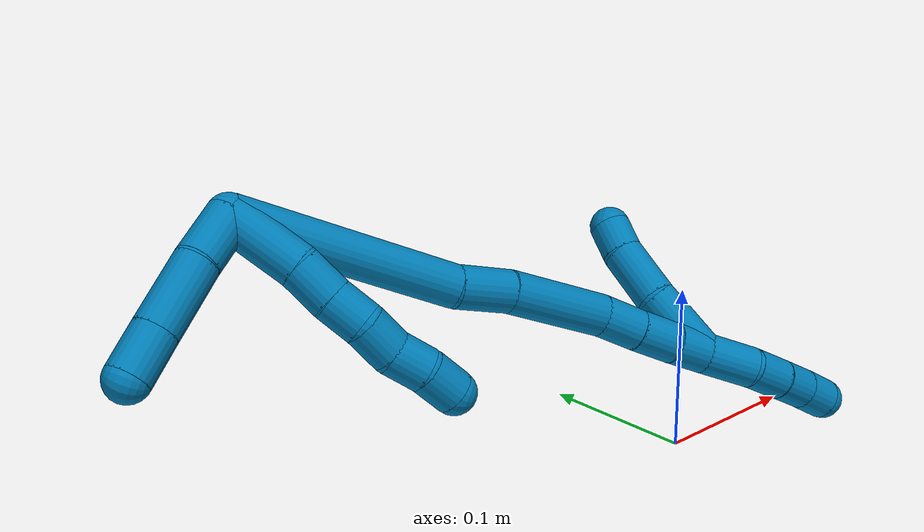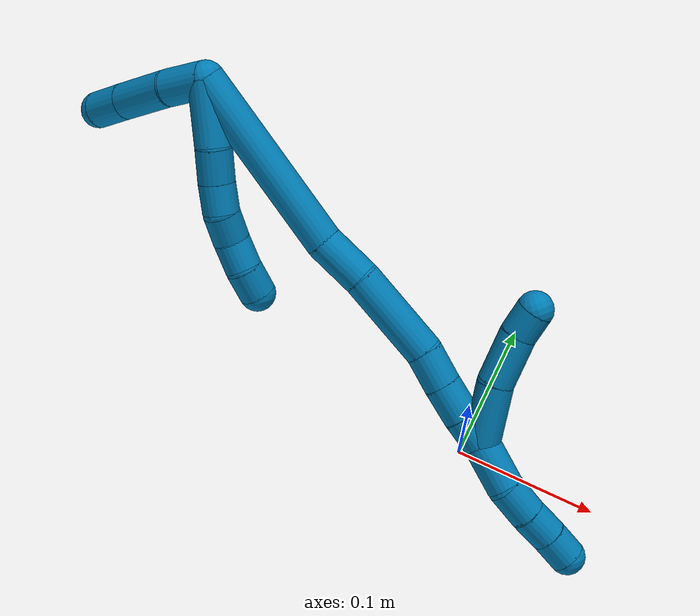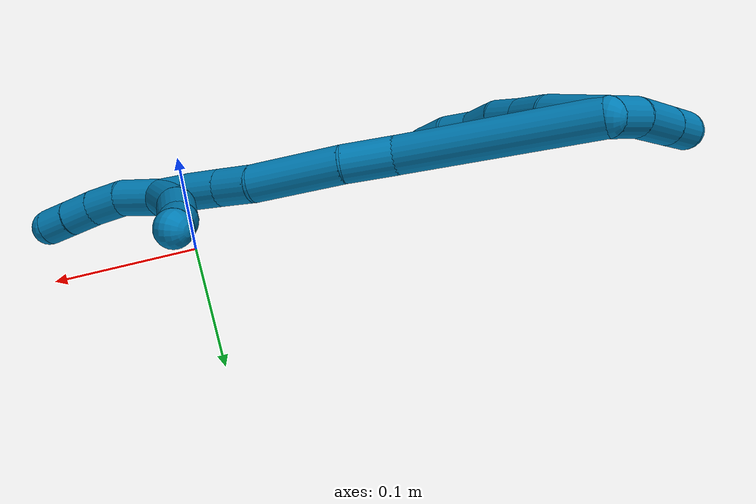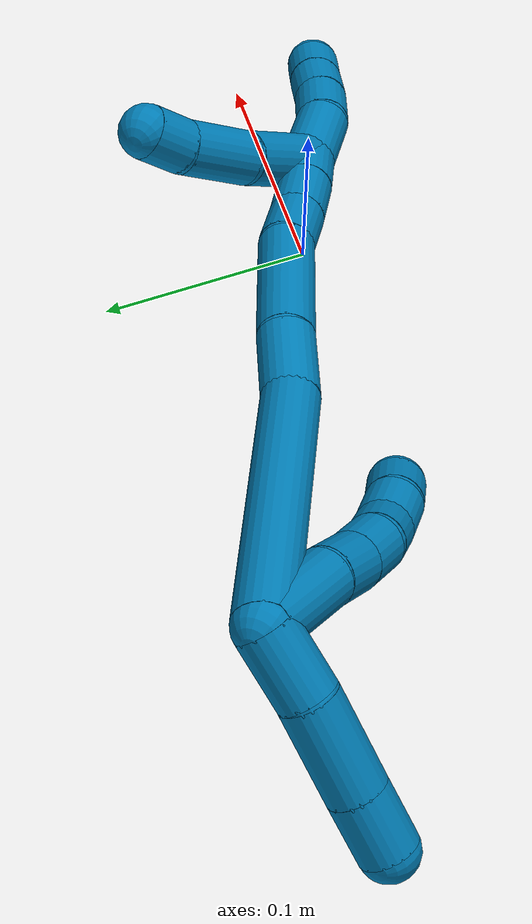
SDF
<sdf version="1.7">
 <world name="default">
  <model name="9">
   <static>0</static>
   <link name="9">
    <collision name="collision-cylinder-e_1_2_8">
     <pose>-0.001645 0.005827 -0.021185 -2.87316 -0.074739 0.540229</pose>
     <geometry><cylinder><radius>0.0125</radius><length>0.044066</length></cylinder></geometry>
     <surface>
      <friction><ode><mu>1.16</mu><mu2>1.16</mu2><slip1>0</slip1><slip2>0</slip2></ode></friction>
      <contact><ode><kp>1e+06</kp><kd>1</kd><max_vel>0</max_vel><min_depth>0.001</min_depth></ode></contact>
     </surface>
    </collision>
    <visual name="visual-cylinder-e_1_2_8">
     <pose>-0.001645 0.005827 -0.021185 -2.87316 -0.074739 0.540229</pose>
     <geometry><cylinder><radius>0.0125</radius><length>0.044066</length></cylinder></geometry>
     <material><ambient>0 0.490196 0.709804 1</ambient></material>
    </visual>
    <collision name="collision-cylinder-e_2_8_9">
     <pose>-0.003289 0.016285 -0.053059 -2.73287 8.4e-05 -0.000407</pose>
     <geometry><cylinder><radius>0.0125</radius><length>0.023299</length></cylinder></geometry>
     <surface>
      <friction><ode><mu>1.16</mu><mu2>1.16</mu2><slip1>0</slip1><slip2>0</slip2></ode></friction>
      <contact><ode><kp>1e+06</kp><kd>1</kd><max_vel>0</max_vel><min_depth>0.001</min_depth></ode></contact>
     </surface>
    </collision>
    <visual name="visual-cylinder-e_2_8_9">
     <pose>-0.003289 0.016285 -0.053059 -2.73287 8.4e-05 -0.000407</pose>
     <geometry><cylinder><radius>0.0125</radius><length>0.023299</length></cylinder></geometry>
     <material><ambient>0 0.490196 0.709804 1</ambient></material>
    </visual>
    <collision name="collision-cylinder-e_3_9_10">
     <pose>-0.003292 0.023946 -0.073598 -2.84302 -0.000343 0.002282</pose>
     <geometry><cylinder><radius>0.0125</radius><length>0.020609</length></cylinder></geometry>
     <surface>
      <friction><ode><mu>1.16</mu><mu2>1.16</mu2><slip1>0</slip1><slip2>0</slip2></ode></friction>
      <contact><ode><kp>1e+06</kp><kd>1</kd><max_vel>0</max_vel><min_depth>0.001</min_depth></ode></contact>
     </surface>
    </collision>
    <visual name="visual-cylinder-e_3_9_10">
     <pose>-0.003292 0.023946 -0.073598 -2.84302 -0.000343 0.002282</pose>
     <geometry><cylinder><radius>0.0125</radius><length>0.020609</length></cylinder></geometry>
     <material><ambient>0 0.490196 0.709804 1</ambient></material>
    </visual>
    <collision name="collision-cylinder-e_4_10_11">
     <pose>-0.000426 0.030647 -0.092773 -2.76668 0.278888 -1.27408</pose>
     <geometry><cylinder><radius>0.0125</radius><length>0.020851</length></cylinder></geometry>
     <surface>
      <friction><ode><mu>1.16</mu><mu2>1.16</mu2><slip1>0</slip1><slip2>0</slip2></ode></friction>
      <contact><ode><kp>1e+06</kp><kd>1</kd><max_vel>0</max_vel><min_depth>0.001</min_depth></ode></contact>
     </surface>
    </collision>
    <visual name="visual-cylinder-e_4_10_11">
     <pose>-0.000426 0.030647 -0.092773 -2.76668 0.278888 -1.27408</pose>
     <geometry><cylinder><radius>0.0125</radius><length>0.020851</length></cylinder></geometry>
     <material><ambient>0 0.490196 0.709804 1</ambient></material>
    </visual>
    <collision name="collision-cylinder-e_5_11_12">
     <pose>0.004263 0.035449 -0.112143 -3.02938 0.178007 -2.0181</pose>
     <geometry><cylinder><radius>0.0125</radius><length>0.020539</length></cylinder></geometry>
     <surface>
      <friction><ode><mu>1.16</mu><mu2>1.16</mu2><slip1>0</slip1><slip2>0</slip2></ode></friction>
      <contact><ode><kp>1e+06</kp><kd>1</kd><max_vel>0</max_vel><min_depth>0.001</min_depth></ode></contact>
     </surface>
    </collision>
    <visual name="visual-cylinder-e_5_11_12">
     <pose>0.004263 0.035449 -0.112143 -3.02938 0.178007 -2.0181</pose>
     <geometry><cylinder><radius>0.0125</radius><length>0.020539</length></cylinder></geometry>
     <material><ambient>0 0.490196 0.709804 1</ambient></material>
    </visual>
    <collision name="collision-cylinder-e_6_12_6">
     <pose>0.009854 0.038867 -0.131514 -2.90124 0.374325 -2.0063</pose>
     <geometry><cylinder><radius>0.0125</radius><length>0.020636</length></cylinder></geometry>
     <surface>
      <friction><ode><mu>1.16</mu><mu2>1.16</mu2><slip1>0</slip1><slip2>0</slip2></ode></friction>
      <contact><ode><kp>1e+06</kp><kd>1</kd><max_vel>0</max_vel><min_depth>0.001</min_depth></ode></contact>
     </surface>
    </collision>
    <visual name="visual-cylinder-e_6_12_6">
     <pose>0.009854 0.038867 -0.131514 -2.90124 0.374325 -2.0063</pose>
     <geometry><cylinder><radius>0.0125</radius><length>0.020636</length></cylinder></geometry>
     <material><ambient>0 0.490196 0.709804 1</ambient></material>
    </visual>
    <collision name="collision-cylinder-e_1_2_13">
     <pose>-0.005372 0.014489 0.002413 -1.40576 -0.350615 0.297906</pose>
     <geometry><cylinder><radius>0.0125</radius><length>0.031281</length></cylinder></geometry>
     <surface>
      <friction><ode><mu>1.16</mu><mu2>1.16</mu2><slip1>0</slip1><slip2>0</slip2></ode></friction>
      <contact><ode><kp>1e+06</kp><kd>1</kd><max_vel>0</max_vel><min_depth>0.001</min_depth></ode></contact>
     </surface>
    </collision>
    <visual name="visual-cylinder-e_1_2_13">
     <pose>-0.005372 0.014489 0.002413 -1.40576 -0.350615 0.297906</pose>
     <geometry><cylinder><radius>0.0125</radius><length>0.031281</length></cylinder></geometry>
     <material><ambient>0 0.490196 0.709804 1</ambient></material>
    </visual>
    <collision name="collision-cylinder-e_2_13_14">
     <pose>-0.015374 0.049056 0.007221 -1.45208 -0.225083 0.20001</pose>
     <geometry><cylinder><radius>0.0125</radius><length>0.041485</length></cylinder></geometry>
     <surface>
      <friction><ode><mu>1.16</mu><mu2>1.16</mu2><slip1>0</slip1><slip2>0</slip2></ode></friction>
      <contact><ode><kp>1e+06</kp><kd>1</kd><max_vel>0</max_vel><min_depth>0.001</min_depth></ode></contact>
     </surface>
    </collision>
    <visual name="visual-cylinder-e_2_13_14">
     <pose>-0.015374 0.049056 0.007221 -1.45208 -0.225083 0.20001</pose>
     <geometry><cylinder><radius>0.0125</radius><length>0.041485</length></cylinder></geometry>
     <material><ambient>0 0.490196 0.709804 1</ambient></material>
    </visual>
    <collision name="collision-cylinder-e_3_14_5">
     <pose>-0.023103 0.082317 0.011023 -1.46445 -0.229626 0.206591</pose>
     <geometry><cylinder><radius>0.0125</radius><length>0.027234</length></cylinder></geometry>
     <surface>
      <friction><ode><mu>1.16</mu><mu2>1.16</mu2><slip1>0</slip1><slip2>0</slip2></ode></friction>
      <contact><ode><kp>1e+06</kp><kd>1</kd><max_vel>0</max_vel><min_depth>0.001</min_depth></ode></contact>
     </surface>
    </collision>
    <visual name="visual-cylinder-e_3_14_5">
     <pose>-0.023103 0.082317 0.011023 -1.46445 -0.229626 0.206591</pose>
     <geometry><cylinder><radius>0.0125</radius><length>0.027234</length></cylinder></geometry>
     <material><ambient>0 0.490196 0.709804 1</ambient></material>
    </visual>
    <collision name="collision-cylinder-e_1_2_15">
     <pose>0.01881 -0.007836 -0.06164 3.01514 0.293947 2.33338</pose>
     <geometry><cylinder><radius>0.0125</radius><length>0.129841</length></cylinder></geometry>
     <surface>
      <friction><ode><mu>1.16</mu><mu2>1.16</mu2><slip1>0</slip1><slip2>0</slip2></ode></friction>
      <contact><ode><kp>1e+06</kp><kd>1</kd><max_vel>0</max_vel><min_depth>0.001</min_depth></ode></contact>
     </surface>
    </collision>
    <visual name="visual-cylinder-e_1_2_15">
     <pose>0.01881 -0.007836 -0.06164 3.01514 0.293947 2.33338</pose>
     <geometry><cylinder><radius>0.0125</radius><length>0.129841</length></cylinder></geometry>
     <material><ambient>0 0.490196 0.709804 1</ambient></material>
    </visual>
    <collision name="collision-cylinder-e_2_15_16">
     <pose>0.043557 -0.021059 -0.138389 2.79912 0.354521 1.60607</pose>
     <geometry><cylinder><radius>0.0125</radius><length>0.03421</length></cylinder></geometry>
     <surface>
      <friction><ode><mu>1.16</mu><mu2>1.16</mu2><slip1>0</slip1><slip2>0</slip2></ode></friction>
      <contact><ode><kp>1e+06</kp><kd>1</kd><max_vel>0</max_vel><min_depth>0.001</min_depth></ode></contact>
     </surface>
    </collision>
    <visual name="visual-cylinder-e_2_15_16">
     <pose>0.043557 -0.021059 -0.138389 2.79912 0.354521 1.60607</pose>
     <geometry><cylinder><radius>0.0125</radius><length>0.03421</length></cylinder></geometry>
     <material><ambient>0 0.490196 0.709804 1</ambient></material>
    </visual>
    <collision name="collision-cylinder-e_3_16_17">
     <pose>0.060298 -0.031953 -0.182566 2.95436 0.350115 2.16556</pose>
     <geometry><cylinder><radius>0.0125</radius><length>0.06299</length></cylinder></geometry>
     <surface>
      <friction><ode><mu>1.16</mu><mu2>1.16</mu2><slip1>0</slip1><slip2>0</slip2></ode></friction>
      <contact><ode><kp>1e+06</kp><kd>1</kd><max_vel>0</max_vel><min_depth>0.001</min_depth></ode></contact>
     </surface>
    </collision>
    <visual name="visual-cylinder-e_3_16_17">
     <pose>0.060298 -0.031953 -0.182566 2.95436 0.350115 2.16556</pose>
     <geometry><cylinder><radius>0.0125</radius><length>0.06299</length></cylinder></geometry>
     <material><ambient>0 0.490196 0.709804 1</ambient></material>
    </visual>
    <collision name="collision-cylinder-e_4_17_18">
     <pose>0.07374 -0.037913 -0.223965 3.10486 0.210703 2.79762</pose>
     <geometry><cylinder><radius>0.0125</radius><length>0.025239</length></cylinder></geometry>
     <surface>
      <friction><ode><mu>1.16</mu><mu2>1.16</mu2><slip1>0</slip1><slip2>0</slip2></ode></friction>
      <contact><ode><kp>1e+06</kp><kd>1</kd><max_vel>0</max_vel><min_depth>0.001</min_depth></ode></contact>
     </surface>
    </collision>
    <visual name="visual-cylinder-e_4_17_18">
     <pose>0.07374 -0.037913 -0.223965 3.10486 0.210703 2.79762</pose>
     <geometry><cylinder><radius>0.0125</radius><length>0.025239</length></cylinder></geometry>
     <material><ambient>0 0.490196 0.709804 1</ambient></material>
    </visual>
    <collision name="collision-cylinder-e_5_18_19">
     <pose>0.079321 -0.039328 -0.248562 3.06326 0.234707 2.49979</pose>
     <geometry><cylinder><radius>0.0125</radius><length>0.025297</length></cylinder></geometry>
     <surface>
      <friction><ode><mu>1.16</mu><mu2>1.16</mu2><slip1>0</slip1><slip2>0</slip2></ode></friction>
      <contact><ode><kp>1e+06</kp><kd>1</kd><max_vel>0</max_vel><min_depth>0.001</min_depth></ode></contact>
     </surface>
    </collision>
    <visual name="visual-cylinder-e_5_18_19">
     <pose>0.079321 -0.039328 -0.248562 3.06326 0.234707 2.49979</pose>
     <geometry><cylinder><radius>0.0125</radius><length>0.025297</length></cylinder></geometry>
     <material><ambient>0 0.490196 0.709804 1</ambient></material>
    </visual>
    <collision name="collision-cylinder-e_6_19_1">
     <pose>0.085558 -0.041586 -0.271464 3.02047 0.298335 2.37462</pose>
     <geometry><cylinder><radius>0.0125</radius><length>0.022423</length></cylinder></geometry>
     <surface>
      <friction><ode><mu>1.16</mu><mu2>1.16</mu2><slip1>0</slip1><slip2>0</slip2></ode></friction>
      <contact><ode><kp>1e+06</kp><kd>1</kd><max_vel>0</max_vel><min_depth>0.001</min_depth></ode></contact>
     </surface>
    </collision>
    <visual name="visual-cylinder-e_6_19_1">
     <pose>0.085558 -0.041586 -0.271464 3.02047 0.298335 2.37462</pose>
     <geometry><cylinder><radius>0.0125</radius><length>0.022423</length></cylinder></geometry>
     <material><ambient>0 0.490196 0.709804 1</ambient></material>
    </visual>
    <collision name="collision-cylinder-e_1_1_20">
     <pose>0.093234 -0.054076 -0.263688 0.546273 0.200552 0.056356</pose>
     <geometry><cylinder><radius>0.0125</radius><length>0.04398</length></cylinder></geometry>
     <surface>
      <friction><ode><mu>1.16</mu><mu2>1.16</mu2><slip1>0</slip1><slip2>0</slip2></ode></friction>
      <contact><ode><kp>1e+06</kp><kd>1</kd><max_vel>0</max_vel><min_depth>0.001</min_depth></ode></contact>
     </surface>
    </collision>
    <visual name="visual-cylinder-e_1_1_20">
     <pose>0.093234 -0.054076 -0.263688 0.546273 0.200552 0.056356</pose>
     <geometry><cylinder><radius>0.0125</radius><length>0.04398</length></cylinder></geometry>
     <material><ambient>0 0.490196 0.709804 1</ambient></material>
    </visual>
    <collision name="collision-cylinder-e_2_20_21">
     <pose>0.103997 -0.075812 -0.232261 0.680776 0.364088 0.13021</pose>
     <geometry><cylinder><radius>0.0125</radius><length>0.035845</length></cylinder></geometry>
     <surface>
      <friction><ode><mu>1.16</mu><mu2>1.16</mu2><slip1>0</slip1><slip2>0</slip2></ode></friction>
      <contact><ode><kp>1e+06</kp><kd>1</kd><max_vel>0</max_vel><min_depth>0.001</min_depth></ode></contact>
     </surface>
    </collision>
    <visual name="visual-cylinder-e_2_20_21">
     <pose>0.103997 -0.075812 -0.232261 0.680776 0.364088 0.13021</pose>
     <geometry><cylinder><radius>0.0125</radius><length>0.035845</length></cylinder></geometry>
     <material><ambient>0 0.490196 0.709804 1</ambient></material>
    </visual>
    <collision name="collision-cylinder-e_3_21_4">
     <pose>0.113932 -0.093597 -0.213193 0.874695 0.360004 0.169751</pose>
     <geometry><cylinder><radius>0.0125</radius><length>0.020175</length></cylinder></geometry>
     <surface>
      <friction><ode><mu>1.16</mu><mu2>1.16</mu2><slip1>0</slip1><slip2>0</slip2></ode></friction>
      <contact><ode><kp>1e+06</kp><kd>1</kd><max_vel>0</max_vel><min_depth>0.001</min_depth></ode></contact>
     </surface>
    </collision>
    <visual name="visual-cylinder-e_3_21_4">
     <pose>0.113932 -0.093597 -0.213193 0.874695 0.360004 0.169751</pose>
     <geometry><cylinder><radius>0.0125</radius><length>0.020175</length></cylinder></geometry>
     <material><ambient>0 0.490196 0.709804 1</ambient></material>
    </visual>
    <collision name="collision-cylinder-e_1_1_22">
     <pose>0.091362 -0.044625 -0.298432 3.03518 0.151575 1.9183</pose>
     <geometry><cylinder><radius>0.0125</radius><length>0.033228</length></cylinder></geometry>
     <surface>
      <friction><ode><mu>1.16</mu><mu2>1.16</mu2><slip1>0</slip1><slip2>0</slip2></ode></friction>
      <contact><ode><kp>1e+06</kp><kd>1</kd><max_vel>0</max_vel><min_depth>0.001</min_depth></ode></contact>
     </surface>
    </collision>
    <visual name="visual-cylinder-e_1_1_22">
     <pose>0.091362 -0.044625 -0.298432 3.03518 0.151575 1.9183</pose>
     <geometry><cylinder><radius>0.0125</radius><length>0.033228</length></cylinder></geometry>
     <material><ambient>0 0.490196 0.709804 1</ambient></material>
    </visual>
    <collision name="collision-cylinder-e_2_22_23">
     <pose>0.098721 -0.047279 -0.325904 3.06011 0.40943 2.75384</pose>
     <geometry><cylinder><radius>0.0125</radius><length>0.024371</length></cylinder></geometry>
     <surface>
      <friction><ode><mu>1.16</mu><mu2>1.16</mu2><slip1>0</slip1><slip2>0</slip2></ode></friction>
      <contact><ode><kp>1e+06</kp><kd>1</kd><max_vel>0</max_vel><min_depth>0.001</min_depth></ode></contact>
     </surface>
    </collision>
    <visual name="visual-cylinder-e_2_22_23">
     <pose>0.098721 -0.047279 -0.325904 3.06011 0.40943 2.75384</pose>
     <geometry><cylinder><radius>0.0125</radius><length>0.024371</length></cylinder></geometry>
     <material><ambient>0 0.490196 0.709804 1</ambient></material>
    </visual>
    <collision name="collision-cylinder-e_3_23_24">
     <pose>0.108675 -0.049049 -0.346563 3.05154 0.490405 2.7853</pose>
     <geometry><cylinder><radius>0.0125</radius><length>0.021668</length></cylinder></geometry>
     <surface>
      <friction><ode><mu>1.16</mu><mu2>1.16</mu2><slip1>0</slip1><slip2>0</slip2></ode></friction>
      <contact><ode><kp>1e+06</kp><kd>1</kd><max_vel>0</max_vel><min_depth>0.001</min_depth></ode></contact>
     </surface>
    </collision>
    <visual name="visual-cylinder-e_3_23_24">
     <pose>0.108675 -0.049049 -0.346563 3.05154 0.490405 2.7853</pose>
     <geometry><cylinder><radius>0.0125</radius><length>0.021668</length></cylinder></geometry>
     <material><ambient>0 0.490196 0.709804 1</ambient></material>
    </visual>
    <collision name="collision-cylinder-e_4_24_3">
     <pose>0.118415 -0.05032 -0.365344 3.09715 0.463846 2.95394</pose>
     <geometry><cylinder><radius>0.0125</radius><length>0.020734</length></cylinder></geometry>
     <surface>
      <friction><ode><mu>1.16</mu><mu2>1.16</mu2><slip1>0</slip1><slip2>0</slip2></ode></friction>
      <contact><ode><kp>1e+06</kp><kd>1</kd><max_vel>0</max_vel><min_depth>0.001</min_depth></ode></contact>
     </surface>
    </collision>
    <visual name="visual-cylinder-e_4_24_3">
     <pose>0.118415 -0.05032 -0.365344 3.09715 0.463846 2.95394</pose>
     <geometry><cylinder><radius>0.0125</radius><length>0.020734</length></cylinder></geometry>
     <material><ambient>0 0.490196 0.709804 1</ambient></material>
    </visual>
    <collision name="collision-sphere-3">
     <pose>0.123053 -0.050732 -0.374606 0 -0 0</pose>
     <geometry><sphere><radius>0.0125</radius></sphere></geometry>
     <surface>
      <friction><ode><mu>1.16</mu><mu2>1.16</mu2><slip1>0</slip1><slip2>0</slip2></ode></friction>
      <contact><ode><kp>1e+06</kp><kd>1</kd><max_vel>0</max_vel><min_depth>0.001</min_depth></ode></contact>
     </surface>
    </collision>
    <visual name="visual-sphere-3">
     <pose>0.123053 -0.050732 -0.374606 0 -0 0</pose>
     <geometry><sphere><radius>0.0125</radius></sphere></geometry>
     <material><ambient>0 0.490196 0.709804 1</ambient></material>
    </visual>
    <collision name="collision-sphere-24">
     <pose>0.113777 -0.049908 -0.356081 0 -0 0</pose>
     <geometry><sphere><radius>0.0125</radius></sphere></geometry>
     <surface>
      <friction><ode><mu>1.16</mu><mu2>1.16</mu2><slip1>0</slip1><slip2>0</slip2></ode></friction>
      <contact><ode><kp>1e+06</kp><kd>1</kd><max_vel>0</max_vel><min_depth>0.001</min_depth></ode></contact>
     </surface>
    </collision>
    <visual name="visual-sphere-24">
     <pose>0.113777 -0.049908 -0.356081 0 -0 0</pose>
     <geometry><sphere><radius>0.0125</radius></sphere></geometry>
     <material><ambient>0 0.490196 0.709804 1</ambient></material>
    </visual>
    <collision name="collision-sphere-23">
     <pose>0.103572 -0.048189 -0.337045 0 -0 0</pose>
     <geometry><sphere><radius>0.0125</radius></sphere></geometry>
     <surface>
      <friction><ode><mu>1.16</mu><mu2>1.16</mu2><slip1>0</slip1><slip2>0</slip2></ode></friction>
      <contact><ode><kp>1e+06</kp><kd>1</kd><max_vel>0</max_vel><min_depth>0.001</min_depth></ode></contact>
     </surface>
    </collision>
    <visual name="visual-sphere-23">
     <pose>0.103572 -0.048189 -0.337045 0 -0 0</pose>
     <geometry><sphere><radius>0.0125</radius></sphere></geometry>
     <material><ambient>0 0.490196 0.709804 1</ambient></material>
    </visual>
    <collision name="collision-sphere-22">
     <pose>0.09387 -0.046369 -0.314763 0 -0 0</pose>
     <geometry><sphere><radius>0.0125</radius></sphere></geometry>
     <surface>
      <friction><ode><mu>1.16</mu><mu2>1.16</mu2><slip1>0</slip1><slip2>0</slip2></ode></friction>
      <contact><ode><kp>1e+06</kp><kd>1</kd><max_vel>0</max_vel><min_depth>0.001</min_depth></ode></contact>
     </surface>
    </collision>
    <visual name="visual-sphere-22">
     <pose>0.09387 -0.046369 -0.314763 0 -0 0</pose>
     <geometry><sphere><radius>0.0125</radius></sphere></geometry>
     <material><ambient>0 0.490196 0.709804 1</ambient></material>
    </visual>
    <collision name="collision-sphere-4">
     <pose>0.117486 -0.100841 -0.207139 0 -0 0</pose>
     <geometry><sphere><radius>0.0125</radius></sphere></geometry>
     <surface>
      <friction><ode><mu>1.16</mu><mu2>1.16</mu2><slip1>0</slip1><slip2>0</slip2></ode></friction>
      <contact><ode><kp>1e+06</kp><kd>1</kd><max_vel>0</max_vel><min_depth>0.001</min_depth></ode></contact>
     </surface>
    </collision>
    <visual name="visual-sphere-4">
     <pose>0.117486 -0.100841 -0.207139 0 -0 0</pose>
     <geometry><sphere><radius>0.0125</radius></sphere></geometry>
     <material><ambient>0 0.490196 0.709804 1</ambient></material>
    </visual>
    <collision name="collision-sphere-21">
     <pose>0.110379 -0.086352 -0.219246 0 -0 0</pose>
     <geometry><sphere><radius>0.0125</radius></sphere></geometry>
     <surface>
      <friction><ode><mu>1.16</mu><mu2>1.16</mu2><slip1>0</slip1><slip2>0</slip2></ode></friction>
      <contact><ode><kp>1e+06</kp><kd>1</kd><max_vel>0</max_vel><min_depth>0.001</min_depth></ode></contact>
     </surface>
    </collision>
    <visual name="visual-sphere-21">
     <pose>0.110379 -0.086352 -0.219246 0 -0 0</pose>
     <geometry><sphere><radius>0.0125</radius></sphere></geometry>
     <material><ambient>0 0.490196 0.709804 1</ambient></material>
    </visual>
    <collision name="collision-sphere-20">
     <pose>0.097614 -0.065271 -0.245275 0 -0 0</pose>
     <geometry><sphere><radius>0.0125</radius></sphere></geometry>
     <surface>
      <friction><ode><mu>1.16</mu><mu2>1.16</mu2><slip1>0</slip1><slip2>0</slip2></ode></friction>
      <contact><ode><kp>1e+06</kp><kd>1</kd><max_vel>0</max_vel><min_depth>0.001</min_depth></ode></contact>
     </surface>
    </collision>
    <visual name="visual-sphere-20">
     <pose>0.097614 -0.065271 -0.245275 0 -0 0</pose>
     <geometry><sphere><radius>0.0125</radius></sphere></geometry>
     <material><ambient>0 0.490196 0.709804 1</ambient></material>
    </visual>
    <collision name="collision-sphere-12">
     <pose>0.006081 0.036581 -0.122186 0 -0 0</pose>
     <geometry><sphere><radius>0.0125</radius></sphere></geometry>
     <surface>
      <friction><ode><mu>1.16</mu><mu2>1.16</mu2><slip1>0</slip1><slip2>0</slip2></ode></friction>
      <contact><ode><kp>1e+06</kp><kd>1</kd><max_vel>0</max_vel><min_depth>0.001</min_depth></ode></contact>
     </surface>
    </collision>
    <visual name="visual-sphere-12">
     <pose>0.006081 0.036581 -0.122186 0 -0 0</pose>
     <geometry><sphere><radius>0.0125</radius></sphere></geometry>
     <material><ambient>0 0.490196 0.709804 1</ambient></material>
    </visual>
    <collision name="collision-sphere-11">
     <pose>0.002444 0.034317 -0.1021 0 -0 0</pose>
     <geometry><sphere><radius>0.0125</radius></sphere></geometry>
     <surface>
      <friction><ode><mu>1.16</mu><mu2>1.16</mu2><slip1>0</slip1><slip2>0</slip2></ode></friction>
      <contact><ode><kp>1e+06</kp><kd>1</kd><max_vel>0</max_vel><min_depth>0.001</min_depth></ode></contact>
     </surface>
    </collision>
    <visual name="visual-sphere-11">
     <pose>0.002444 0.034317 -0.1021 0 -0 0</pose>
     <geometry><sphere><radius>0.0125</radius></sphere></geometry>
     <material><ambient>0 0.490196 0.709804 1</ambient></material>
    </visual>
    <collision name="collision-sphere-10">
     <pose>-0.003295 0.026977 -0.083447 0 -0 0</pose>
     <geometry><sphere><radius>0.0125</radius></sphere></geometry>
     <surface>
      <friction><ode><mu>1.16</mu><mu2>1.16</mu2><slip1>0</slip1><slip2>0</slip2></ode></friction>
      <contact><ode><kp>1e+06</kp><kd>1</kd><max_vel>0</max_vel><min_depth>0.001</min_depth></ode></contact>
     </surface>
    </collision>
    <visual name="visual-sphere-10">
     <pose>-0.003295 0.026977 -0.083447 0 -0 0</pose>
     <geometry><sphere><radius>0.0125</radius></sphere></geometry>
     <material><ambient>0 0.490196 0.709804 1</ambient></material>
    </visual>
    <collision name="collision-sphere-9">
     <pose>-0.003288 0.020915 -0.063749 0 -0 0</pose>
     <geometry><sphere><radius>0.0125</radius></sphere></geometry>
     <surface>
      <friction><ode><mu>1.16</mu><mu2>1.16</mu2><slip1>0</slip1><slip2>0</slip2></ode></friction>
      <contact><ode><kp>1e+06</kp><kd>1</kd><max_vel>0</max_vel><min_depth>0.001</min_depth></ode></contact>
     </surface>
    </collision>
    <visual name="visual-sphere-9">
     <pose>-0.003288 0.020915 -0.063749 0 -0 0</pose>
     <geometry><sphere><radius>0.0125</radius></sphere></geometry>
     <material><ambient>0 0.490196 0.709804 1</ambient></material>
    </visual>
    <collision name="collision-sphere-2">
     <geometry><sphere><radius>0.0125</radius></sphere></geometry>
     <surface>
      <friction><ode><mu>1.16</mu><mu2>1.16</mu2><slip1>0</slip1><slip2>0</slip2></ode></friction>
      <contact><ode><kp>1e+06</kp><kd>1</kd><max_vel>0</max_vel><min_depth>0.001</min_depth></ode></contact>
     </surface>
    </collision>
    <visual name="visual-sphere-2">
     <geometry><sphere><radius>0.0125</radius></sphere></geometry>
     <material><ambient>0 0.490196 0.709804 1</ambient></material>
    </visual>
    <collision name="collision-sphere-19">
     <pose>0.082262 -0.040291 -0.260826 0 -0 0</pose>
     <geometry><sphere><radius>0.0125</radius></sphere></geometry>
     <surface>
      <friction><ode><mu>1.16</mu><mu2>1.16</mu2><slip1>0</slip1><slip2>0</slip2></ode></friction>
      <contact><ode><kp>1e+06</kp><kd>1</kd><max_vel>0</max_vel><min_depth>0.001</min_depth></ode></contact>
     </surface>
    </collision>
    <visual name="visual-sphere-19">
     <pose>0.082262 -0.040291 -0.260826 0 -0 0</pose>
     <geometry><sphere><radius>0.0125</radius></sphere></geometry>
     <material><ambient>0 0.490196 0.709804 1</ambient></material>
    </visual>
    <collision name="collision-sphere-8">
     <pose>-0.00329 0.011655 -0.042369 0 -0 0</pose>
     <geometry><sphere><radius>0.0125</radius></sphere></geometry>
     <surface>
      <friction><ode><mu>1.16</mu><mu2>1.16</mu2><slip1>0</slip1><slip2>0</slip2></ode></friction>
      <contact><ode><kp>1e+06</kp><kd>1</kd><max_vel>0</max_vel><min_depth>0.001</min_depth></ode></contact>
     </surface>
    </collision>
    <visual name="visual-sphere-8">
     <pose>-0.00329 0.011655 -0.042369 0 -0 0</pose>
     <geometry><sphere><radius>0.0125</radius></sphere></geometry>
     <material><ambient>0 0.490196 0.709804 1</ambient></material>
    </visual>
    <collision name="collision-sphere-6">
     <pose>0.013627 0.041153 -0.140842 0 -0 0</pose>
     <geometry><sphere><radius>0.0125</radius></sphere></geometry>
     <surface>
      <friction><ode><mu>1.16</mu><mu2>1.16</mu2><slip1>0</slip1><slip2>0</slip2></ode></friction>
      <contact><ode><kp>1e+06</kp><kd>1</kd><max_vel>0</max_vel><min_depth>0.001</min_depth></ode></contact>
     </surface>
    </collision>
    <visual name="visual-sphere-6">
     <pose>0.013627 0.041153 -0.140842 0 -0 0</pose>
     <geometry><sphere><radius>0.0125</radius></sphere></geometry>
     <material><ambient>0 0.490196 0.709804 1</ambient></material>
    </visual>
    <collision name="collision-sphere-13">
     <pose>-0.010744 0.028979 0.004827 0 -0 0</pose>
     <geometry><sphere><radius>0.0125</radius></sphere></geometry>
     <surface>
      <friction><ode><mu>1.16</mu><mu2>1.16</mu2><slip1>0</slip1><slip2>0</slip2></ode></friction>
      <contact><ode><kp>1e+06</kp><kd>1</kd><max_vel>0</max_vel><min_depth>0.001</min_depth></ode></contact>
     </surface>
    </collision>
    <visual name="visual-sphere-13">
     <pose>-0.010744 0.028979 0.004827 0 -0 0</pose>
     <geometry><sphere><radius>0.0125</radius></sphere></geometry>
     <material><ambient>0 0.490196 0.709804 1</ambient></material>
    </visual>
    <collision name="collision-sphere-14">
     <pose>-0.020003 0.069133 0.009616 0 -0 0</pose>
     <geometry><sphere><radius>0.0125</radius></sphere></geometry>
     <surface>
      <friction><ode><mu>1.16</mu><mu2>1.16</mu2><slip1>0</slip1><slip2>0</slip2></ode></friction>
      <contact><ode><kp>1e+06</kp><kd>1</kd><max_vel>0</max_vel><min_depth>0.001</min_depth></ode></contact>
     </surface>
    </collision>
    <visual name="visual-sphere-14">
     <pose>-0.020003 0.069133 0.009616 0 -0 0</pose>
     <geometry><sphere><radius>0.0125</radius></sphere></geometry>
     <material><ambient>0 0.490196 0.709804 1</ambient></material>
    </visual>
    <collision name="collision-sphere-5">
     <pose>-0.026202 0.095502 0.012431 0 -0 0</pose>
     <geometry><sphere><radius>0.0125</radius></sphere></geometry>
     <surface>
      <friction><ode><mu>1.16</mu><mu2>1.16</mu2><slip1>0</slip1><slip2>0</slip2></ode></friction>
      <contact><ode><kp>1e+06</kp><kd>1</kd><max_vel>0</max_vel><min_depth>0.001</min_depth></ode></contact>
     </surface>
    </collision>
    <visual name="visual-sphere-5">
     <pose>-0.026202 0.095502 0.012431 0 -0 0</pose>
     <geometry><sphere><radius>0.0125</radius></sphere></geometry>
     <material><ambient>0 0.490196 0.709804 1</ambient></material>
    </visual>
    <collision name="collision-sphere-15">
     <pose>0.037619 -0.015672 -0.123279 0 -0 0</pose>
     <geometry><sphere><radius>0.0125</radius></sphere></geometry>
     <surface>
      <friction><ode><mu>1.16</mu><mu2>1.16</mu2><slip1>0</slip1><slip2>0</slip2></ode></friction>
      <contact><ode><kp>1e+06</kp><kd>1</kd><max_vel>0</max_vel><min_depth>0.001</min_depth></ode></contact>
     </surface>
    </collision>
    <visual name="visual-sphere-15">
     <pose>0.037619 -0.015672 -0.123279 0 -0 0</pose>
     <geometry><sphere><radius>0.0125</radius></sphere></geometry>
     <material><ambient>0 0.490196 0.709804 1</ambient></material>
    </visual>
    <collision name="collision-sphere-16">
     <pose>0.049495 -0.026446 -0.153499 0 -0 0</pose>
     <geometry><sphere><radius>0.0125</radius></sphere></geometry>
     <surface>
      <friction><ode><mu>1.16</mu><mu2>1.16</mu2><slip1>0</slip1><slip2>0</slip2></ode></friction>
      <contact><ode><kp>1e+06</kp><kd>1</kd><max_vel>0</max_vel><min_depth>0.001</min_depth></ode></contact>
     </surface>
    </collision>
    <visual name="visual-sphere-16">
     <pose>0.049495 -0.026446 -0.153499 0 -0 0</pose>
     <geometry><sphere><radius>0.0125</radius></sphere></geometry>
     <material><ambient>0 0.490196 0.709804 1</ambient></material>
    </visual>
    <collision name="collision-sphere-17">
     <pose>0.071101 -0.037459 -0.211633 0 -0 0</pose>
     <geometry><sphere><radius>0.0125</radius></sphere></geometry>
     <surface>
      <friction><ode><mu>1.16</mu><mu2>1.16</mu2><slip1>0</slip1><slip2>0</slip2></ode></friction>
      <contact><ode><kp>1e+06</kp><kd>1</kd><max_vel>0</max_vel><min_depth>0.001</min_depth></ode></contact>
     </surface>
    </collision>
    <visual name="visual-sphere-17">
     <pose>0.071101 -0.037459 -0.211633 0 -0 0</pose>
     <geometry><sphere><radius>0.0125</radius></sphere></geometry>
     <material><ambient>0 0.490196 0.709804 1</ambient></material>
    </visual>
    <collision name="collision-sphere-18">
     <pose>0.076379 -0.038366 -0.236298 0 -0 0</pose>
     <geometry><sphere><radius>0.0125</radius></sphere></geometry>
     <surface>
      <friction><ode><mu>1.16</mu><mu2>1.16</mu2><slip1>0</slip1><slip2>0</slip2></ode></friction>
      <contact><ode><kp>1e+06</kp><kd>1</kd><max_vel>0</max_vel><min_depth>0.001</min_depth></ode></contact>
     </surface>
    </collision>
    <visual name="visual-sphere-18">
     <pose>0.076379 -0.038366 -0.236298 0 -0 0</pose>
     <geometry><sphere><radius>0.0125</radius></sphere></geometry>
     <material><ambient>0 0.490196 0.709804 1</ambient></material>
    </visual>
    <collision name="collision-sphere-1">
     <pose>0.088853 -0.042881 -0.282101 0 -0 0</pose>
     <geometry><sphere><radius>0.0125</radius></sphere></geometry>
     <surface>
      <friction><ode><mu>1.16</mu><mu2>1.16</mu2><slip1>0</slip1><slip2>0</slip2></ode></friction>
      <contact><ode><kp>1e+06</kp><kd>1</kd><max_vel>0</max_vel><min_depth>0.001</min_depth></ode></contact>
     </surface>
    </collision>
    <visual name="visual-sphere-1">
     <pose>0.088853 -0.042881 -0.282101 0 -0 0</pose>
     <geometry><sphere><radius>0.0125</radius></sphere></geometry>
     <material><ambient>0 0.490196 0.709804 1</ambient></material>
    </visual>
    <inertial>
     <pose>0.043367 -0.013775 -0.145859 0 -0 0</pose>
     <mass>0.75</mass>
     <inertia>
      <ixx>6.8e-05</ixx>
      <ixy>0</ixy>
      <ixz>0</ixz>
      <iyy>0.000335</iyy>
      <iyz>0</iyz>
      <izz>-8.3e-05</izz>
     </inertia>
    </inertial>
   </link>
   <pose>-0.237692 0.103849 0.173633 -1.11938 0.474028 1.0124</pose>
  </model>
 </world>
</sdf>
